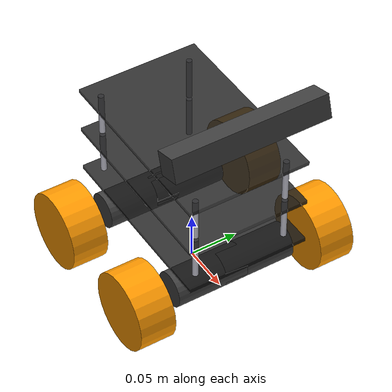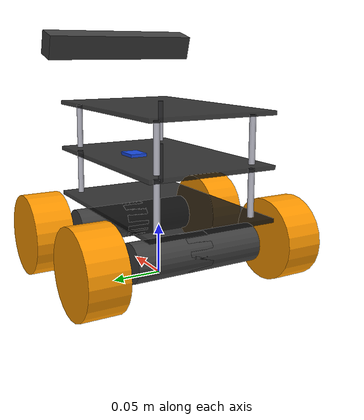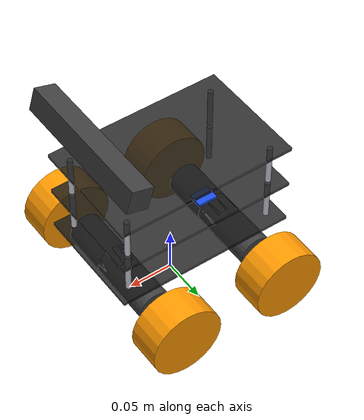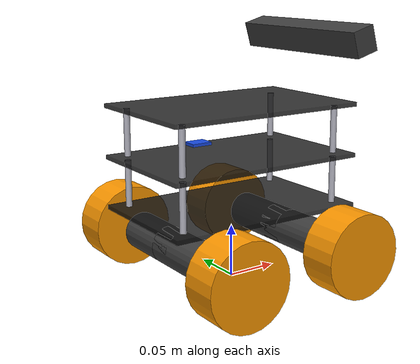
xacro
<?xml version="1.0"?>
<robot xmlns:xacro="http://www.ros.org/wiki/xacro" name="mecanum_robot">

  <!-- ── Acrylic plate ────────────────────────────────────────────────────── -->
  <xacro:property name="plate_l"  value="0.198"/>  <!-- 198 mm -->
  <xacro:property name="plate_w"  value="0.128"/>  <!-- 128 mm -->
  <xacro:property name="plate_h"  value="0.004"/>  <!-- 4 mm acrylic -->
  <xacro:property name="standoff" value="0.045"/>  <!-- 45 mm aluminium standoff -->
  <!-- centre-to-centre gap between adjacent plates -->
  <xacro:property name="layer_dz" value="${standoff + plate_h}"/>  <!-- 49 mm -->

  <!-- ── Wheel / drive ────────────────────────────────────────────────────── -->
  <xacro:property name="wheel_radius" value="0.040"/>   <!-- Ø80 mm / 2 -->
  <xacro:property name="wheel_width"  value="0.0374"/>  <!-- 37.4 mm -->

  <!-- Half distances (matched to config/mecanum_params.yaml).
       Full wheelbase = 125 mm, full track = 200 mm. -->
  <xacro:property name="lx" value="0.0625"/>  <!-- 125 mm wheelbase / 2 -->
  <xacro:property name="ly" value="0.100"/>   <!-- 200 mm track / 2 -->

  <!-- Drive axle hangs below the bottom plate; wheel & motor are coaxial on it.
       Measured plate-underside → axle-centre ≈ 30 mm. -->
  <xacro:property name="axle_drop" value="0.030"/>
  <xacro:property name="wheel_z"   value="${-axle_drop}"/>  <!-- wheel axle below plate -->
  <xacro:property name="motor_z"   value="${-axle_drop}"/>  <!-- motor shares the axle -->

  <!-- ── Materials ────────────────────────────────────────────────────────── -->
  <material name="acrylic_black"><color rgba="0.10 0.10 0.10 0.85"/></material>
  <material name="acrylic_clear"><color rgba="0.80 0.90 1.00 0.50"/></material>
  <material name="standoff_col"> <color rgba="0.75 0.75 0.80 1.00"/></material>
  <material name="imu_blue">     <color rgba="0.10 0.30 0.90 1.00"/></material>
  <material name="wheel_col">    <color rgba="1.00 0.60 0.00 1.00"/></material>
  <material name="motor_col">    <color rgba="0.25 0.25 0.25 1.00"/></material>

  <!-- ── Inertia helpers ──────────────────────────────────────────────────── -->
  <!-- solid box: m, x, y, z -->
  <xacro:macro name="box_inertia" params="m x y z">
    <inertial>
      <mass value="${m}"/>
      <inertia ixx="${m*(y*y+z*z)/12}" ixy="0" ixz="0"
               iyy="${m*(x*x+z*z)/12}" iyz="0"
               izz="${m*(x*x+y*y)/12}"/>
    </inertial>
  </xacro:macro>

  <!-- solid cylinder: m, r, l (axis = Z) -->
  <xacro:macro name="cyl_inertia" params="m r l">
    <inertial>
      <mass value="${m}"/>
      <inertia ixx="${m*(3*r*r+l*l)/12}" ixy="0" ixz="0"
               iyy="${m*(3*r*r+l*l)/12}" iyz="0"
               izz="${m*r*r/2}"/>
    </inertial>
  </xacro:macro>

  <!-- ════════════════════════════════════════════════════════════════════════
       LINKS
       ════════════════════════════════════════════════════════════════════════ -->

  <!-- base_footprint — ground-projection frame (Nav2 convention) -->
  <link name="base_footprint"/>

  <joint name="base_footprint_joint" type="fixed">
    <parent link="base_footprint"/>
    <child  link="base_link"/>
    <!-- axle sits wheel_radius above ground; plate is axle_drop above the axle -->
    <origin xyz="0 0 ${wheel_radius + axle_drop}" rpy="0 0 0"/>
  </joint>

  <!-- ── Layer 1 — bottom plate (motor / battery level) ───────────────────── -->
  <link name="base_link">
    <visual>
      <geometry><box size="${plate_l} ${plate_w} ${plate_h}"/></geometry>
      <material name="acrylic_black"/>
    </visual>
    <collision>
      <geometry><box size="${plate_l} ${plate_w} ${plate_h}"/></geometry>
    </collision>
    <xacro:box_inertia m="0.090" x="${plate_l}" y="${plate_w}" z="${plate_h}"/>
  </link>

  <!-- ── Layer 2 — middle plate (Pico / TB6612 / wiring) ─────────────────── -->
  <link name="mid_plate_link">
    <visual>
      <geometry><box size="${plate_l} ${plate_w} ${plate_h}"/></geometry>
      <material name="acrylic_black"/>
    </visual>
    <collision>
      <geometry><box size="${plate_l} ${plate_w} ${plate_h}"/></geometry>
    </collision>
    <xacro:box_inertia m="0.090" x="${plate_l}" y="${plate_w}" z="${plate_h}"/>
  </link>

  <joint name="mid_plate_joint" type="fixed">
    <parent link="base_link"/>
    <child  link="mid_plate_link"/>
    <origin xyz="0 0 ${layer_dz}" rpy="0 0 0"/>
  </joint>

  <!-- ── Layer 3 — top plate (RDK X5 / sensors) ──────────────────────────── -->
  <link name="top_plate_link">
    <visual>
      <geometry><box size="${plate_l} ${plate_w} ${plate_h}"/></geometry>
      <material name="acrylic_black"/>
    </visual>
    <collision>
      <geometry><box size="${plate_l} ${plate_w} ${plate_h}"/></geometry>
    </collision>
    <xacro:box_inertia m="0.090" x="${plate_l}" y="${plate_w}" z="${plate_h}"/>
  </link>

  <joint name="top_plate_joint" type="fixed">
    <parent link="base_link"/>
    <child  link="top_plate_link"/>
    <origin xyz="0 0 ${2*layer_dz}" rpy="0 0 0"/>
  </joint>

  <!-- ── Standoff visual macro (4 per pair of plates) ────────────────────── -->
  <xacro:macro name="standoff_link" params="name x y parent_link">
    <link name="${name}_standoff">
      <visual>
        <geometry><cylinder length="${standoff}" radius="0.003"/></geometry>
        <material name="standoff_col"/>
      </visual>
      <inertial>
        <mass value="0.005"/>
        <inertia ixx="1e-6" ixy="0" ixz="0" iyy="1e-6" iyz="0" izz="1e-6"/>
      </inertial>
    </link>
    <joint name="${name}_standoff_joint" type="fixed">
      <parent link="${parent_link}"/>
      <child  link="${name}_standoff"/>
      <origin xyz="${x} ${y} ${plate_h/2 + standoff/2}" rpy="0 0 0"/>
    </joint>
  </xacro:macro>

  <!-- Bottom → Mid standoffs (corners, inset 15 mm) -->
  <xacro:standoff_link name="b2m_fl" x=" 0.084" y=" 0.049" parent_link="base_link"/>
  <xacro:standoff_link name="b2m_fr" x=" 0.084" y="-0.049" parent_link="base_link"/>
  <xacro:standoff_link name="b2m_rl" x="-0.084" y=" 0.049" parent_link="base_link"/>
  <xacro:standoff_link name="b2m_rr" x="-0.084" y="-0.049" parent_link="base_link"/>

  <!-- Mid → Top standoffs -->
  <xacro:standoff_link name="m2t_fl" x=" 0.084" y=" 0.049" parent_link="mid_plate_link"/>
  <xacro:standoff_link name="m2t_fr" x=" 0.084" y="-0.049" parent_link="mid_plate_link"/>
  <xacro:standoff_link name="m2t_rl" x="-0.084" y=" 0.049" parent_link="mid_plate_link"/>
  <xacro:standoff_link name="m2t_rr" x="-0.084" y="-0.049" parent_link="mid_plate_link"/>

  <!-- ── Motor macro (Ø36.6 mm × 76 mm body, mounted to chassis side) ──────── -->
  <xacro:macro name="motor_link" params="name x y mirror">
    <link name="${name}_motor">
      <visual>
        <!-- body -->
        <geometry><cylinder length="0.076" radius="0.0183"/></geometry>
        <material name="motor_col"/>
      </visual>
      <xacro:cyl_inertia m="0.200" r="0.0183" l="0.076"/>
    </link>
    <joint name="${name}_motor_joint" type="fixed">
      <parent link="base_link"/>
      <child  link="${name}_motor"/>
      <origin xyz="${x} ${mirror*(plate_w/2 - 0.038)} ${motor_z}" rpy="${pi/2} 0 0"/>
    </joint>
  </xacro:macro>

  <xacro:motor_link name="FL" x=" ${lx}" y=" ${ly}" mirror=" 1"/>
  <xacro:motor_link name="RL" x="-${lx}" y=" ${ly}" mirror=" 1"/>
  <xacro:motor_link name="RR" x="-${lx}" y="-${ly}" mirror="-1"/>
  <xacro:motor_link name="FR" x=" ${lx}" y="-${ly}" mirror="-1"/>

  <!-- ── Wheel macro ──────────────────────────────────────────────────────── -->
  <xacro:macro name="mecanum_wheel" params="name x y">
    <link name="${name}_wheel_link">
      <visual>
        <geometry><cylinder length="${wheel_width}" radius="${wheel_radius}"/></geometry>
        <material name="wheel_col"/>
      </visual>
      <collision>
        <!-- simplified sphere for contact — avoids roller-geometry complexity -->
        <geometry><sphere radius="${wheel_radius}"/></geometry>
      </collision>
      <!--
        Wheel mass 96 g per datasheet.
        I_zz (spin) = ½mr²  = 0.5 × 0.096 × 0.040² = 7.68e-5
        I_xx = I_yy = m(3r²+l²)/12 = 0.096×(3×0.0016+0.001399)/12 = 4.96e-5
      -->
      <inertial>
        <mass value="0.096"/>
        <inertia ixx="4.96e-5" ixy="0" ixz="0"
                 iyy="4.96e-5" iyz="0"
                 izz="7.68e-5"/>
      </inertial>
    </link>

    <joint name="${name}_wheel_joint" type="continuous">
      <parent link="base_link"/>
      <child  link="${name}_wheel_link"/>
      <origin xyz="${x} ${y} ${wheel_z}" rpy="${pi/2} 0 0"/>
      <axis xyz="0 0 1"/>
      <dynamics damping="0.01" friction="0.1"/>
    </joint>
  </xacro:macro>

  <!-- Wheel order matches firmware: A=FL, B=RL, C=RR, D=FR -->
  <xacro:mecanum_wheel name="FL" x=" ${lx}" y=" ${ly}"/>
  <xacro:mecanum_wheel name="RL" x="-${lx}" y=" ${ly}"/>
  <xacro:mecanum_wheel name="RR" x="-${lx}" y="-${ly}"/>
  <xacro:mecanum_wheel name="FR" x=" ${lx}" y="-${ly}"/>

  <!-- ── IMU — MPU-9250 on Pico I²C (GP0/GP1), mounted on the centre plate ──
       Measured on robot: 6 mm above the plate top, 15 mm toward the back (-X),
       35 mm to the left (+Y). -->
  <link name="imu_link">
    <visual>
      <geometry><box size="0.021 0.016 0.003"/></geometry>
      <material name="imu_blue"/>
    </visual>
    <inertial>
      <mass value="0.005"/>
      <inertia ixx="1e-6" ixy="0" ixz="0" iyy="1e-6" iyz="0" izz="1e-6"/>
    </inertial>
  </link>
  <joint name="imu_joint" type="fixed">
    <parent link="mid_plate_link"/>
    <child  link="imu_link"/>
    <origin xyz="-0.015 0.035 ${plate_h/2 + 0.006}" rpy="0 0 0"/>
  </joint>

  <!-- ── RDK X5 (top plate centre) — no visual until PCB dimensions confirmed -->
  <link name="rdkx5_link">
    <inertial>
      <mass value="0.150"/>
      <inertia ixx="1e-4" ixy="0" ixz="0" iyy="1e-4" iyz="0" izz="1e-4"/>
    </inertial>
  </link>
  <joint name="rdkx5_joint" type="fixed">
    <parent link="top_plate_link"/>
    <child  link="rdkx5_link"/>
    <origin xyz="0 0 0.012" rpy="0 0 0"/>
  </joint>

  <link name="camera_link">
    <visual>
      <geometry><box size="0.024 0.164 0.025"/></geometry>
      <material name="motor_col"/>
    </visual>
    <inertial>
      <mass value="0.050"/>
      <inertia ixx="1e-5" ixy="0" ixz="0" iyy="1e-5" iyz="0" izz="1e-5"/>
    </inertial>
  </link>
  <joint name="camera_joint" type="fixed">
    <parent link="base_link"/>
    <child  link="camera_link"/>
    <!-- pitch -16° tilts the camera's +X (forward) axis upward -->
    <origin xyz="0.090 0 ${2*layer_dz + 0.060}" rpy="0 ${radians(-16)} 0"/>
  </joint>

</robot>
